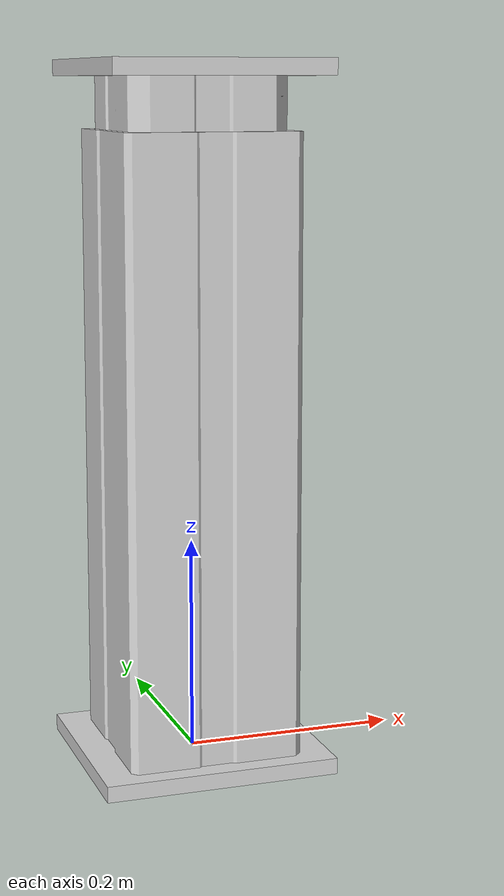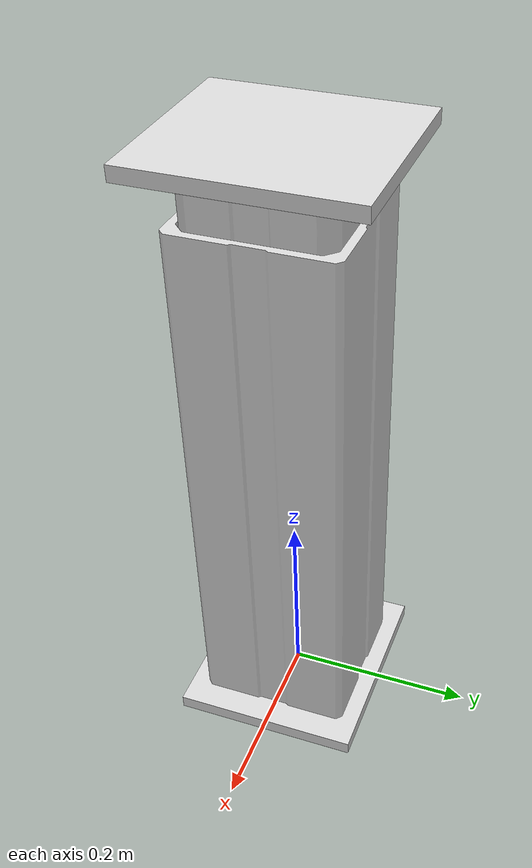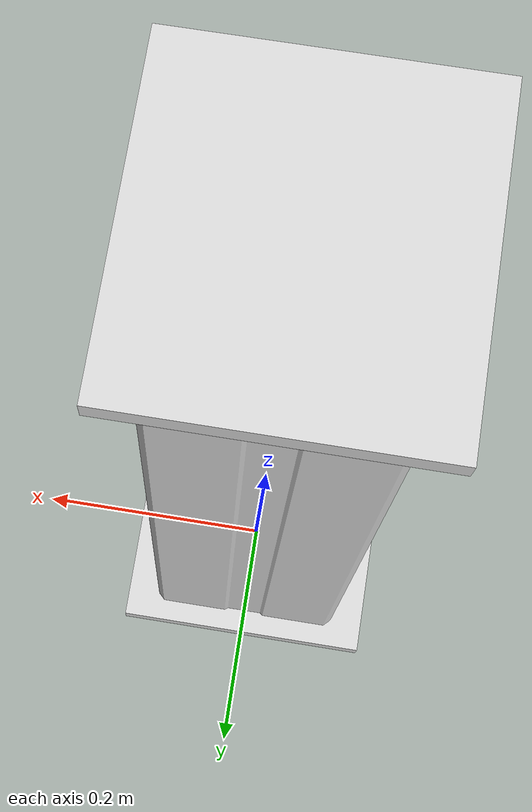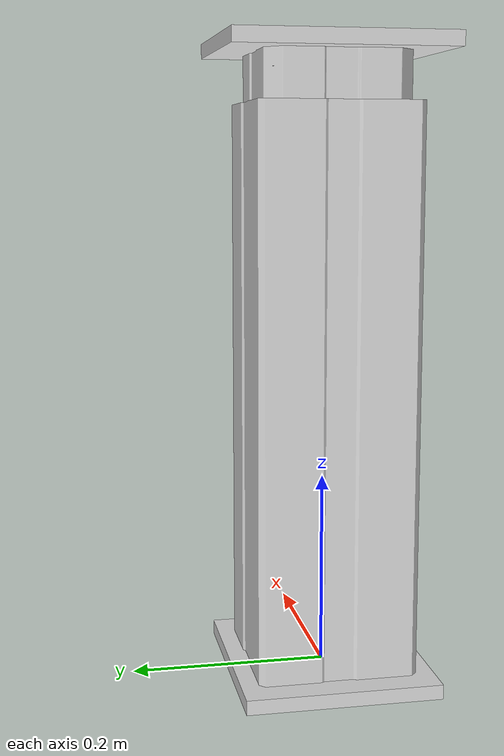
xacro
<?xml version="1.0"?>
<robot xmlns:xacro="http://wiki.ros.org/xacro" name="ewellix_liftkit">

  <!-- Include central parameters -->
  <xacro:include filename="$(find ewellix_liftkit_description)/urdf/parameters.xacro"/>

  <!-- Standard arguments (these are already in parameters.xacro, but repeated here for clarity) -->
  <xacro:arg name="name" default="ewellix_liftkit"/>
  <xacro:arg name="tf_prefix" default="" />
  <xacro:arg name="parent" default="world" />

  <link name="world"/>

  <!-- Include macro files -->
  <xacro:include filename="$(find ewellix_liftkit_description)/urdf/ewellix_lift.xacro"/>
  <xacro:include filename="$(find ewellix_liftkit_description)/urdf/properties.xacro"/>

  <!-- Call the ewellix_lift macro -->
  <xacro:ewellix_lift
    name="$(arg name)"
    is_700="$(arg is_700)"
    is_500="$(arg is_500)"
    tf_prefix="$(arg tf_prefix)"
    parent="$(arg parent)"
    height_limit="$(arg height_limit)"
    initial_value="$(arg initial_value)"
    calibration_direction="$(arg calibration_direction)"
    max_ticks_mot_1="$(arg max_ticks_mot_1)"
    max_ticks_mot_2="$(arg max_ticks_mot_2)"
    min_height_m="$(arg min_height_m)"
    max_height_m="$(arg max_height_m)"
    omit_plates="$(arg omit_plates)"
    use_fake_hardware="$(arg use_fake_hardware)"
    com_port_top="$(arg com_port_top)"
    com_port_bottom="$(arg com_port_bottom)"
    use_gazebo="$(arg use_gazebo)"
    generate_ros2_control_tag="true"
  >
    <origin xyz="0 0 0" rpy="0 0 0"/>
  </xacro:ewellix_lift>

</robot>

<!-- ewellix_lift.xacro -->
<robot xmlns:xacro="http://www.ros.org/wiki/xacro">

  <xacro:macro name="ewellix_lift" params="
    name
    tf_prefix:=''
    parent:=world
    height_limit:=0.6
    initial_value:=0.0
    calibration_direction:=none
    max_ticks_mot_1:=871
    max_ticks_mot_2:=870
    min_height_m:=0.048
    max_height_m:=0.587
    omit_plates:=false
    is_700:=true
    is_500:=false
    use_fake_hardware:=false
    com_port_top:=/dev/ttyACM0
    com_port_bottom:=/dev/ttyACM1
    use_gazebo:=false
    generate_ros2_control_tag:=true
    *origin
  ">

    <xacro:if value="${not omit_plates}">
      <xacro:property name="lift_base_link_name" value="${tf_prefix}ewellix_lift_base_link"/>
    </xacro:if>

    <!--For 700 mm stroke-->
    <xacro:if value="${is_700}">

      <xacro:if value="${height_limit >= 0.7}">
        <xacro:property name="height_limit" value="0.7"/>
      </xacro:if>

      <xacro:property name="base_mass_value" value="1.7383784"/>
      <xacro:property name="base_box_size" value="0.220 0.200 0.015"/>
      <xacro:property name="lift_base_link_ixx" value="0.0057788770" scope="parent"/>
      <xacro:property name="lift_base_link_ixy" value="0.0" scope="parent"/>
      <xacro:property name="lift_base_link_ixz" value="0.0" scope="parent"/>
      <xacro:property name="lift_base_link_iyy" value="0.0070031715" scope="parent"/>
      <xacro:property name="lift_base_link_iyz" value="0.0" scope="parent"/>
      <xacro:property name="lift_base_link_izz" value="0.0127170180" scope="parent"/>

      <xacro:property name="base_to_lower_origin_z" value="0.295"/>

      <xacro:property name="lower_mass_value" value="19.521070"/>
      <xacro:property name="lower_box_size" value="0.163 0.163 0.575"/>
      <xacro:property name="lower_mesh_filename" value="file://$(find ewellix_liftkit_description)/meshes/visual/lift_low_700mm.dae"/>
      <xacro:property name="lift_lower_link_ixx" value="0.46604111" scope="parent"/>
      <xacro:property name="lift_lower_link_ixy" value="0.0" scope="parent"/>
      <xacro:property name="lift_lower_link_ixz" value="0.0" scope="parent"/>
      <xacro:property name="lift_lower_link_iyy" value="0.46480515" scope="parent"/>
      <xacro:property name="lift_lower_link_iyz" value="-0.002668667" scope="parent"/>
      <xacro:property name="lift_lower_link_izz" value="0.1561" scope="parent"/>

      <xacro:property name="lower_to_higher_origin_z" value="0.0915"/>

      <xacro:property name="middle_mass_value" value="15.593303"/>
      <xacro:property name="middle_box_size" value="0.146 0.146 0.483"/>
      <xacro:property name="middle_mesh_filename" value="file://$(find ewellix_liftkit_description)/meshes/visual/lift_mid_700mm.dae"/>
      <xacro:property name="lift_middle_link_ixx" value="0.34930648" scope="parent"/>
      <xacro:property name="lift_middle_link_ixy" value="0.0" scope="parent"/>
      <xacro:property name="lift_middle_link_ixz" value="0.0" scope="parent"/>
      <xacro:property name="lift_middle_link_iyy" value="0.34930648" scope="parent"/>
      <xacro:property name="lift_middle_link_iyz" value="0.0" scope="parent"/>
      <xacro:property name="lift_middle_link_izz" value="0.095393471" scope="parent"/>

      <xacro:property name="middle_to_higher_origin_z" value="-0.03397"/>
      <xacro:property name="middle_upper_limit" value="0.35"/>

      <xacro:property name="higher_mass_value" value="15.166778"/>
      <xacro:property name="higher_box_size" value="0.129 0.129 0.488"/>
      <xacro:property name="higher_mesh_filename" value="file://$(find ewellix_liftkit_description)/meshes/visual/lift_high_700mm.dae"/>
      <xacro:property name="lift_higher_link_ixx" value="0.35552099" scope="parent"/>
      <xacro:property name="lift_higher_link_ixy" value="0.000009631" scope="parent"/>
      <xacro:property name="lift_higher_link_ixz" value="0.000022848" scope="parent"/>
      <xacro:property name="lift_higher_link_iyy" value="0.35552876" scope="parent"/>
      <xacro:property name="lift_higher_link_iyz" value="0.000054910" scope="parent"/>
      <xacro:property name="lift_higher_link_izz" value="0.069925583" scope="parent"/>

      <xacro:property name="higher_to_top_origin_z" value="0.2515"/>

      <xacro:property name="top_mass_value" value="4.9139525"/>
      <xacro:property name="top_box_size" value="0.200 0.220 0.015"/>
      <xacro:property name="lift_top_link_ixx" value="0.02015548" scope="parent"/>
      <xacro:property name="lift_top_link_ixy" value="-0.000022811" scope="parent"/>
      <xacro:property name="lift_top_link_ixz" value="0.0" scope="parent"/>
      <xacro:property name="lift_top_link_iyy" value="0.01664141" scope="parent"/>
      <xacro:property name="lift_top_link_iyz" value="0.0" scope="parent"/>
      <xacro:property name="lift_top_link_izz" value="0.03661307" scope="parent"/>

      <xacro:property name="lift_tip_joint_origin_z" value="0.244"/>

    </xacro:if>

    <!--For 500 mm stroke-->
    <xacro:if value="${is_500}">

      <xacro:if value="${height_limit >= 0.5}">
        <xacro:property name="height_limit" value="0.5"/>
      </xacro:if>

      <xacro:property name="is_700" value="false"/>

      <xacro:property name="base_mass_value" value="1.7383784"/>
      <xacro:property name="base_box_size" value="0.220 0.200 0.015"/>
      <xacro:property name="lift_base_link_ixx" value="0.0057788774" scope="parent"/>
      <xacro:property name="lift_base_link_ixy" value="0" scope="parent"/>
      <xacro:property name="lift_base_link_ixz" value="0" scope="parent"/>
      <xacro:property name="lift_base_link_iyy" value="0.0070031719" scope="parent"/>
      <xacro:property name="lift_base_link_iyz" value="0" scope="parent"/>
      <xacro:property name="lift_base_link_izz" value="0.012717018" scope="parent"/>

      <xacro:property name="base_to_lower_origin_z" value="0.2457"/>

      <xacro:property name="lower_mass_value" value="6.746306"/>
      <xacro:property name="lower_box_size" value="0.163 0.163 0.4764"/>
      <xacro:property name="lower_mesh_filename" value="file://$(find ewellix_liftkit_description)/meshes/visual/lift_low_500mm.stl"/>
      <xacro:property name="lift_lower_link_ixx" value="0.1579129" scope="parent"/>
      <xacro:property name="lift_lower_link_ixy" value="0" scope="parent"/>
      <xacro:property name="lift_lower_link_ixz" value="0" scope="parent"/>
      <xacro:property name="lift_lower_link_iyy" value="0.1578582" scope="parent"/>
      <xacro:property name="lift_lower_link_iyz" value="0" scope="parent"/>
      <xacro:property name="lift_lower_link_izz" value="0.053799503" scope="parent"/>

      <xacro:property name="lower_to_higher_origin_z" value="0.0368"/>

      <xacro:property name="middle_mass_value" value="5.411604"/>
      <xacro:property name="middle_box_size" value="0.146 0.146 0.4794"/>
      <xacro:property name="middle_mesh_filename" value="file://$(find ewellix_liftkit_description)/meshes/visual/lift_mid_500mm.stl"/>
      <xacro:property name="lift_middle_link_ixx" value="0.11963018" scope="parent"/>
      <xacro:property name="lift_middle_link_ixy" value="0" scope="parent"/>
      <xacro:property name="lift_middle_link_ixz" value="0" scope="parent"/>
      <xacro:property name="lift_middle_link_iyy" value="0.11963018" scope="parent"/>
      <xacro:property name="lift_middle_link_iyz" value="0" scope="parent"/>
      <xacro:property name="lift_middle_link_izz" value="0.033099694" scope="parent"/>

      <xacro:property name="middle_to_higher_origin_z" value="-0.0303"/>
      <xacro:property name="middle_upper_limit" value="0.25"/>

      <xacro:property name="higher_mass_value" value="5.324879"/>
      <xacro:property name="higher_box_size" value="0.129 0.129 0.490"/>
      <xacro:property name="higher_mesh_filename" value="file://$(find ewellix_liftkit_description)/meshes/visual/lift_high_500mm.stl"/>
      <xacro:property name="lift_higher_link_ixx" value="0.12572077" scope="parent"/>
      <xacro:property name="lift_higher_link_ixy" value="0" scope="parent"/>
      <xacro:property name="lift_higher_link_ixz" value="0" scope="parent"/>
      <xacro:property name="lift_higher_link_iyy" value="0.12571806" scope="parent"/>
      <xacro:property name="lift_higher_link_iyz" value="0" scope="parent"/>
      <xacro:property name="lift_higher_link_izz" value="0.024552208" scope="parent"/>

      <xacro:property name="higher_to_top_origin_z" value="0.2525"/>

      <xacro:property name="top_mass_value" value="1.718423"/>
      <xacro:property name="top_box_size" value="0.200 0.220 0.015"/>
      <xacro:property name="lift_top_link_ixx" value="0.0058195514" scope="parent"/>
      <xacro:property name="lift_top_link_ixy" value="0.0" scope="parent"/>
      <xacro:property name="lift_top_link_ixz" value="0.00000800" scope="parent"/>
      <xacro:property name="lift_top_link_iyy" value="0.0070484261" scope="parent"/>
      <xacro:property name="lift_top_link_iyz" value="0.0" scope="parent"/>
      <xacro:property name="lift_top_link_izz" value="0.012803695" scope="parent"/>

      <xacro:property name="lift_tip_joint_origin_z" value="0.245"/>

    </xacro:if>

    <xacro:unless value="${not omit_plates}">
      <xacro:property name="lift_base_link_name" value="${tf_prefix}ewellix_lift_lower_link"/>
    </xacro:unless>

    <joint name="${tf_prefix}ewellix_lift_base_joint" type="fixed">
      <parent link="${parent}"/>
      <child link="${lift_base_link_name}"/>
      <xacro:insert_block name="origin"/>
    </joint>

    <!--BASE (omit_plates=false)-->
    <xacro:if value="${not omit_plates}">
      <link name="${tf_prefix}ewellix_lift_base_link">
        <inertial>
          <mass value="${base_mass_value}"/>
          <inertia ixx="${lift_base_link_ixx}" ixy="${lift_base_link_ixy}" ixz="${lift_base_link_ixz}" iyy="${lift_base_link_iyy}" iyz="${lift_base_link_iyz}" izz="${lift_base_link_izz}"/>
        </inertial>
        <visual>
          <geometry>
            <box size="${base_box_size}"/>
          </geometry>
          <material name="gray"/>
        </visual>
        <collision>
          <geometry>
            <box size="${base_box_size}"/>
          </geometry>
        </collision>
      </link>
    </xacro:if>

    <!--LOWER-->
    <link name="${tf_prefix}ewellix_lift_lower_link">
      <inertial>
        <mass value="${lower_mass_value}"/>
        <inertia ixx="${lift_lower_link_ixx}" ixy="${lift_lower_link_ixy}" ixz="${lift_lower_link_ixz}" iyy="${lift_lower_link_iyy}" iyz="${lift_lower_link_iyz}" izz="${lift_lower_link_izz}"/>
      </inertial>
      <visual>
        <geometry>
          <mesh filename="${lower_mesh_filename}"/>
        </geometry>
        <material name="gray"/>
      </visual>
      <collision>
        <geometry>
          <box size="${lower_box_size}"/>
        </geometry>
      </collision>
    </link>

    <!--BASE TO LOWER (FIXED, omit_plates=false)-->
    <xacro:if value="${not omit_plates}">
      <joint name="${tf_prefix}base_to_lower" type="fixed">
        <parent link="${tf_prefix}ewellix_lift_base_link"/>
        <child link="${tf_prefix}ewellix_lift_lower_link"/>
        <origin xyz="0 0 ${base_to_lower_origin_z}" rpy="0 0 0"/>
      </joint>
    </xacro:if>

    <!--MIDDLE-->
    <link name="${tf_prefix}ewellix_lift_middle_link">
      <inertial>
        <mass value="${middle_mass_value}"/>
        <inertia ixx="${lift_middle_link_ixx}" ixy="${lift_middle_link_ixy}" ixz="${lift_middle_link_ixz}" iyy="${lift_middle_link_iyy}" iyz="${lift_middle_link_iyz}" izz="${lift_middle_link_izz}"/>
      </inertial>
      <visual>
        <geometry>
          <mesh filename="${middle_mesh_filename}"/>
        </geometry>
        <material name="gray"/>
      </visual>
      <collision>
        <geometry>
          <box size="${middle_box_size}"/>
        </geometry>
      </collision>
    </link>

    <!--HIGHER-->
    <link name="${tf_prefix}ewellix_lift_higher_link">
      <inertial>
        <mass value="${higher_mass_value}"/>
        <inertia ixx="${lift_higher_link_ixx}" ixy="${lift_higher_link_ixy}" ixz="${lift_higher_link_ixz}" iyy="${lift_higher_link_iyy}" iyz="${lift_higher_link_iyz}" izz="${lift_higher_link_izz}"/>
      </inertial>
      <visual>
        <geometry>
          <mesh filename="${higher_mesh_filename}"/>
        </geometry>
        <material name="gray"/>
      </visual>
      <collision>
        <geometry>
          <box size="${higher_box_size}"/>
        </geometry>
      </collision>
    </link>

    <!--LOWER TO HIGHER (PRISMATIC)-->
    <joint name="${tf_prefix}ewellix_lift_lower_to_higher" type="prismatic">
      <parent link="${tf_prefix}ewellix_lift_lower_link"/>
      <child link="${tf_prefix}ewellix_lift_higher_link"/>
      <origin xyz="0 0 ${lower_to_higher_origin_z}" rpy="0 0 0"/>
      <axis xyz="0 0 1"/>
      <limit lower="0" upper="${height_limit}" effort="1000" velocity="1"/>
    </joint>

    <!--MIDDLE MIMIC HIGHER (PRISMATIC MIMIC)-->
    <joint name="${tf_prefix}middle_mimic_higher" type="prismatic">
      <parent link="${tf_prefix}ewellix_lift_higher_link"/>
      <child link="${tf_prefix}ewellix_lift_middle_link"/>
      <origin xyz="0 0 ${middle_to_higher_origin_z}" rpy="0 0 0"/>
      <axis xyz="0 0 -1"/>
      <limit lower="0" upper="${middle_upper_limit}" effort="1000" velocity="1"/>
      <mimic joint="${tf_prefix}ewellix_lift_lower_to_higher" multiplier="0.5" offset="0"/>
    </joint>

    <!--TOP (omit_plates=false)-->
    <xacro:if value="${not omit_plates}">
      <link name="${tf_prefix}ewellix_lift_top_link">
        <inertial>
          <mass value="${top_mass_value}"/>
          <inertia ixx="${lift_top_link_ixx}" ixy="${lift_top_link_ixy}" ixz="${lift_top_link_ixz}" iyy="${lift_top_link_iyy}" iyz="${lift_top_link_iyz}" izz="${lift_top_link_izz}"/>
        </inertial>
        <visual>
          <geometry>
            <box size="${top_box_size}"/>
          </geometry>
          <material name="gray"/>
        </visual>
        <collision>
          <geometry>
            <box size="${top_box_size}"/>
          </geometry>
        </collision>
      </link>
    </xacro:if>

    <!--HIGHER TO TOP (FIXED, omit_plates=false)-->
    <xacro:if value="${not omit_plates}">
      <joint name="${tf_prefix}higher_to_top" type="fixed">
        <parent link="${tf_prefix}ewellix_lift_higher_link"/>
        <child link="${tf_prefix}ewellix_lift_top_link"/>
        <origin xyz="0 0 ${higher_to_top_origin_z}" rpy="0 0 0"/>
      </joint>
    </xacro:if>

    <link name="${tf_prefix}ewellix_lift_tip_link"/>

    <joint name="${tf_prefix}ewellix_lift_tip_joint" type="fixed">
      <parent link="${tf_prefix}ewellix_lift_higher_link"/>
      <child link="${tf_prefix}ewellix_lift_tip_link"/>
      <origin xyz="0 0 ${lift_tip_joint_origin_z}" rpy="0 0 0"/>
    </joint>

    <!-- ROS2 Control block -->
    <xacro:if value="${generate_ros2_control_tag}">
      <xacro:include filename="$(find ewellix_liftkit_description)/urdf/ewellix_liftkit.ros2_control.xacro" />
      <xacro:ewellix_liftkit_ros2_control
        name="${name}"
        use_fake_hardware="${use_fake_hardware}"
        use_gazebo="${use_gazebo}"
        tf_prefix="${tf_prefix}"
        com_port_top="${com_port_top}"
        com_port_bottom="${com_port_bottom}"
        height_limit="${height_limit}"
        initial_value="${initial_value}"
        calibration_direction="${calibration_direction}"
        max_ticks_mot_1="${max_ticks_mot_1}"
        max_ticks_mot_2="${max_ticks_mot_2}"
        min_height_m="${min_height_m}"
        max_height_m="${max_height_m}"
        homing_current_a="0.5"
        stall_velocity_thresh="5"
        stall_time_ms="400"
        homing_timeout_ms="15000"
        poll_ms="20"
        backoff_counts="500"
        top_home_direction="1"
        bottom_home_direction="1"
      />
    </xacro:if>

  </xacro:macro>

</robot>

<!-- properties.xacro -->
<robot xmlns:xacro="http://wiki.ros.org/xacro">

    <material name="gray">
        <color rgba="0.85 0.85 0.85 1"/>
    </material>

    <material name="blue">
        <color rgba="0 0 1 1"/>
    </material>

</robot>
